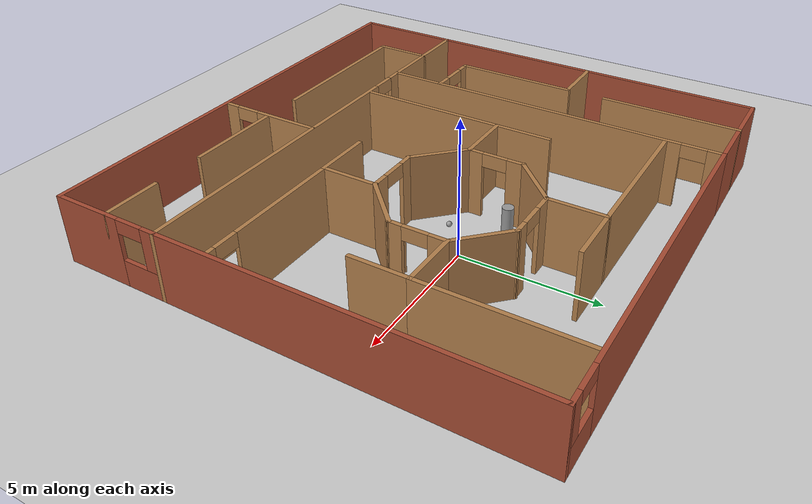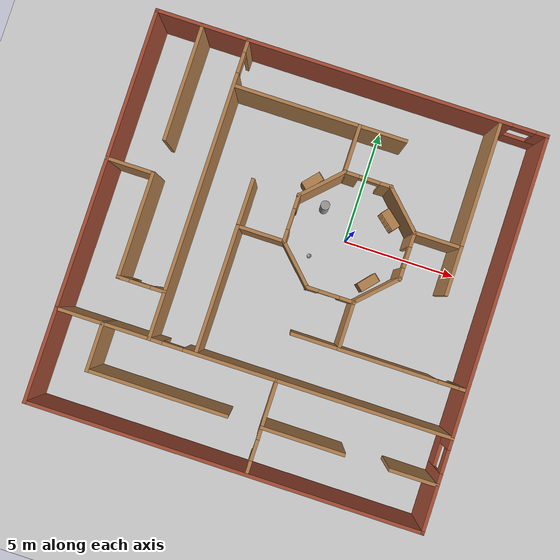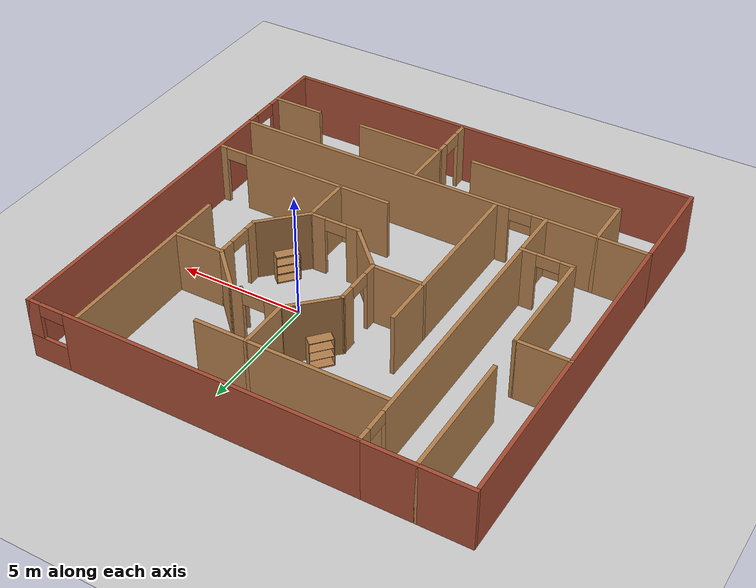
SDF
<sdf version="1.6">
 <world name="default">
  <plugin name="welcome" filename="libwelcome.so"/>
  <light name="sun" type="directional">
   <pose>0 0 10 0 -0 0</pose>
   <diffuse>0.8 0.8 0.8 1</diffuse>
   <specular>0.2 0.2 0.2 1</specular>
   <attenuation>
    <range>1000</range>
    <constant>0.9</constant>
    <linear>0.01</linear>
    <quadratic>0.001</quadratic>
   </attenuation>
   <direction>-0.5 0.1 -0.9</direction>
  </light>
  <model name="ground_plane">
   <static>1</static>
   <link name="link">
    <collision name="collision">
     <geometry><plane><normal>0 0 1</normal><size>100 100</size></plane></geometry>
     <surface><friction><ode><mu>100</mu><mu2>50</mu2></ode></friction></surface>
    </collision>
    <visual name="visual">
     <cast_shadows>0</cast_shadows>
     <geometry><plane><normal>0 0 1</normal><size>100 100</size></plane></geometry>
     <material>
      <script><uri>file://media/materials/scripts/gazebo.material</uri><name>Gazebo/Grey</name></script>
     </material>
    </visual>
   </link>
  </model>
  <gravity>0 0 -9.8</gravity>
  <magnetic_field>6e-06 2.3e-05 -4.2e-05</magnetic_field>
  <atmosphere type="adiabatic"/>
  <physics name="default_physics" default="0" type="ode">
   <max_step_size>0.001</max_step_size>
   <real_time_factor>1</real_time_factor>
   <real_time_update_rate>1000</real_time_update_rate>
  </physics>
  <scene><ambient>0.4 0.4 0.4 1</ambient><background>0.7 0.7 0.7 1</background><shadows>1</shadows></scene>
  <spherical_coordinates>
   <surface_model>EARTH_WGS84</surface_model>
   <latitude_deg>0</latitude_deg>
   <longitude_deg>0</longitude_deg>
   <elevation>0</elevation>
   <heading_deg>0</heading_deg>
  </spherical_coordinates>
  <model name="my_ball">
   <link name="link_0">
    <inertial>
     <mass>1</mass>
     <inertia><ixx>0.1</ixx><ixy>0</ixy><ixz>0</ixz><iyy>0.1</iyy><iyz>0</iyz><izz>0.1</izz></inertia>
    </inertial>
    <visual name="visual">
     <geometry><sphere><radius>0.1</radius></sphere></geometry>
     <material>
      <lighting>1</lighting>
      <script><uri>file://media/materials/scripts/gazebo.material</uri><name>Gazebo/Grey</name></script>
      <shader type="pixel"><normal_map>__default__</normal_map></shader>
      <ambient>1 1 1 1</ambient>
      <diffuse>1 1 1 1</diffuse>
      <specular>1 1 1 1</specular>
      <emissive>1 1 1 1</emissive>
     </material>
    </visual>
    <collision name="collision">
     <geometry><sphere><radius>0.1</radius></sphere></geometry>
     <surface>
      <friction>
       <ode><mu>1</mu><mu2>1</mu2><fdir1>0 0 0</fdir1><slip1>0</slip1><slip2>0</slip2></ode>
       <torsional>
        <coefficient>1</coefficient>
        <patch_radius>0</patch_radius>
        <surface_radius>0</surface_radius>
        <use_patch_radius>1</use_patch_radius>
        <ode><slip>0</slip></ode>
       </torsional>
      </friction>
      <bounce><restitution_coefficient>0</restitution_coefficient><threshold>1e+06</threshold></bounce>
      <contact>
       <collide_without_contact>0</collide_without_contact>
       <collide_without_contact_bitmask>1</collide_without_contact_bitmask>
       <collide_bitmask>1</collide_bitmask>
       <ode>
        <soft_cfm>0</soft_cfm>
        <soft_erp>0.2</soft_erp>
        <kp>1e+13</kp>
        <kd>1</kd>
        <max_vel>0.01</max_vel>
        <min_depth>0</min_depth>
       </ode>
       <bullet>
        <split_impulse>1</split_impulse>
        <split_impulse_penetration_threshold>-0.01</split_impulse_penetration_threshold>
        <soft_cfm>0</soft_cfm>
        <soft_erp>0.2</soft_erp>
        <kp>1e+13</kp>
        <kd>1</kd>
       </bullet>
      </contact>
     </surface>
    </collision>
   </link>
   <static>0</static>
   <pose>-1.31165 -1.10214 0.1 -0.022459 0 0</pose>
  </model>
  <model name="Build-new">
   <pose>-2 -2 0 0 -0 0</pose>
   <link name="Wall_10">
    <pose>4.5 2 0 0 0 -1.5708</pose>
    <visual name="Wall_10_Visual_0">
     <pose>-0.725331 0 1.25 0 -0 0</pose>
     <geometry><box><size>0.699338 0.15 2.5</size></box></geometry>
     <material>
      <script><uri>file://media/materials/scripts/gazebo.material</uri><name>Gazebo/Wood</name></script>
      <ambient>0.266667 0.137255 1 1</ambient>
     </material>
     <meta><layer>0</layer></meta>
    </visual>
    <collision name="Wall_10_Collision_0">
     <geometry><box><size>0.699338 0.15 2.5</size></box></geometry>
     <pose>-0.725331 0 1.25 0 -0 0</pose>
    </collision>
    <visual name="Wall_10_Visual_1">
     <pose>0.799669 0 1.25 0 -0 0</pose>
     <geometry><box><size>0.550662 0.15 2.5</size></box></geometry>
     <material>
      <script><uri>file://media/materials/scripts/gazebo.material</uri><name>Gazebo/Wood</name></script>
      <ambient>0.266667 0.137255 1 1</ambient>
     </material>
     <meta><layer>0</layer></meta>
    </visual>
    <collision name="Wall_10_Collision_1">
     <geometry><box><size>0.550662 0.15 2.5</size></box></geometry>
     <pose>0.799669 0 1.25 0 -0 0</pose>
    </collision>
    <visual name="Wall_10_Visual_2">
     <pose>0.074338 0 2.25 0 -0 0</pose>
     <geometry><box><size>0.9 0.15 0.5</size></box></geometry>
     <material>
      <script><uri>file://media/materials/scripts/gazebo.material</uri><name>Gazebo/Wood</name></script>
      <ambient>0.266667 0.137255 1 1</ambient>
     </material>
     <meta><layer>0</layer></meta>
    </visual>
    <collision name="Wall_10_Collision_2">
     <geometry><box><size>0.9 0.15 0.5</size></box></geometry>
     <pose>0.074338 0 2.25 0 -0 0</pose>
    </collision>
   </link>
   <link name="Wall_11">
    <collision name="Wall_11_Collision">
     <geometry><box><size>2.27132 0.15 2.5</size></box></geometry>
     <pose>0 0 1.25 0 -0 0</pose>
    </collision>
    <visual name="Wall_11_Visual">
     <pose>0 0 1.25 0 -0 0</pose>
     <geometry><box><size>2.27132 0.15 2.5</size></box></geometry>
     <material>
      <script><uri>file://media/materials/scripts/gazebo.material</uri><name>Gazebo/Wood</name></script>
      <ambient>0.278431 0.133333 1 1</ambient>
     </material>
     <meta><layer>0</layer></meta>
    </visual>
    <pose>3.75 0.25 0 0 0 -2.35619</pose>
   </link>
   <link name="Wall_13">
    <collision name="Wall_13_Collision">
     <geometry><box><size>2.15 0.15 2.5</size></box></geometry>
     <pose>0 0 1.25 0 -0 0</pose>
    </collision>
    <visual name="Wall_13_Visual">
     <pose>0 0 1.25 0 -0 0</pose>
     <geometry><box><size>2.15 0.15 2.5</size></box></geometry>
     <material>
      <script><uri>file://media/materials/scripts/gazebo.material</uri><name>Gazebo/Wood</name></script>
      <ambient>0.278431 0.133333 1 1</ambient>
     </material>
     <meta><layer>0</layer></meta>
    </visual>
    <pose>1 5.5 0 0 -0 1.5708</pose>
   </link>
   <link name="Wall_14">
    <collision name="Wall_14_Collision">
     <geometry><box><size>2.15 0.15 2.5</size></box></geometry>
     <pose>0 0 1.25 0 -0 0</pose>
    </collision>
    <visual name="Wall_14_Visual">
     <pose>0 0 1.25 0 -0 0</pose>
     <geometry><box><size>2.15 0.15 2.5</size></box></geometry>
     <material>
      <script><uri>file://media/materials/scripts/gazebo.material</uri><name>Gazebo/Wood</name></script>
      <ambient>0.278431 0.133333 1 1</ambient>
     </material>
     <meta><layer>0</layer></meta>
    </visual>
    <pose>2 6.5 0 0 -0 0</pose>
   </link>
   <link name="Wall_16">
    <collision name="Wall_16_Collision">
     <geometry><box><size>2.15 0.15 2.5</size></box></geometry>
     <pose>0 0 1.25 0 -0 0</pose>
    </collision>
    <visual name="Wall_16_Visual">
     <pose>0 0 1.25 0 -0 0</pose>
     <geometry><box><size>2.15 0.15 2.5</size></box></geometry>
     <material>
      <script><uri>file://media/materials/scripts/gazebo.material</uri><name>Gazebo/Wood</name></script>
      <ambient>0.266667 0.137255 1 1</ambient>
     </material>
     <meta><layer>0</layer></meta>
    </visual>
    <pose>5.5 3 0 0 -0 0</pose>
   </link>
   <link name="Wall_17">
    <collision name="Wall_17_Collision">
     <geometry><box><size>2.15 0.15 2.5</size></box></geometry>
     <pose>0 0 1.25 0 -0 0</pose>
    </collision>
    <visual name="Wall_17_Visual">
     <pose>0 0 1.25 0 -0 0</pose>
     <geometry><box><size>2.15 0.15 2.5</size></box></geometry>
     <material>
      <script><uri>file://media/materials/scripts/gazebo.material</uri><name>Gazebo/Wood</name></script>
      <ambient>0.266667 0.137255 1 1</ambient>
     </material>
     <meta><layer>0</layer></meta>
    </visual>
    <pose>6.5 2 0 0 0 -1.5708</pose>
   </link>
   <link name="Wall_19">
    <collision name="Wall_19_Collision">
     <geometry><box><size>2.15 0.15 2.5</size></box></geometry>
     <pose>0 0 1.25 0 -0 0</pose>
    </collision>
    <visual name="Wall_19_Visual">
     <pose>0 0 1.25 0 -0 0</pose>
     <geometry><box><size>2.15 0.15 2.5</size></box></geometry>
     <material>
      <script><uri>file://media/materials/scripts/gazebo.material</uri><name>Gazebo/Wood</name></script>
      <ambient>0.266667 0.137255 1 1</ambient>
     </material>
     <meta><layer>0</layer></meta>
    </visual>
    <pose>-1.5 1 0 0 -0 3.14159</pose>
   </link>
   <link name="Wall_20">
    <collision name="Wall_20_Collision">
     <geometry><box><size>2.15 0.15 2.5</size></box></geometry>
     <pose>0 0 1.25 0 -0 0</pose>
    </collision>
    <visual name="Wall_20_Visual">
     <pose>0 0 1.25 0 -0 0</pose>
     <geometry><box><size>2.15 0.15 2.5</size></box></geometry>
     <material>
      <script><uri>file://media/materials/scripts/gazebo.material</uri><name>Gazebo/Wood</name></script>
      <ambient>0.266667 0.137255 1 1</ambient>
     </material>
     <meta><layer>0</layer></meta>
    </visual>
    <pose>-2.5 2 0 0 -0 1.5708</pose>
   </link>
   <link name="Wall_22">
    <collision name="Wall_22_Collision">
     <geometry><box><size>2.15 0.15 2.5</size></box></geometry>
     <pose>0 0 1.25 0 -0 0</pose>
    </collision>
    <visual name="Wall_22_Visual">
     <pose>0 0 1.25 0 -0 0</pose>
     <geometry><box><size>2.15 0.15 2.5</size></box></geometry>
     <material>
      <script><uri>file://media/materials/scripts/gazebo.material</uri><name>Gazebo/Wood</name></script>
      <ambient>0.266667 0.137255 1 1</ambient>
     </material>
     <meta><layer>0</layer></meta>
    </visual>
    <pose>3 -1.5 0 0 0 -1.5708</pose>
   </link>
   <link name="Wall_23">
    <collision name="Wall_23_Collision">
     <geometry><box><size>2.15 0.15 2.5</size></box></geometry>
     <pose>0 0 1.25 0 -0 0</pose>
    </collision>
    <visual name="Wall_23_Visual">
     <pose>0 0 1.25 0 -0 0</pose>
     <geometry><box><size>2.15 0.15 2.5</size></box></geometry>
     <material>
      <script><uri>file://media/materials/scripts/gazebo.material</uri><name>Gazebo/Wood</name></script>
      <ambient>0.266667 0.137255 1 1</ambient>
     </material>
     <meta><layer>0</layer></meta>
    </visual>
    <pose>2 -2.5 0 0 -0 3.14159</pose>
   </link>
   <link name="Wall_25">
    <pose>2 8.5 0 0 -0 0</pose>
    <visual name="Wall_25_Visual_0">
     <pose>-0.7875 0 1.25 0 -0 0</pose>
     <geometry><box><size>11.575 0.15 2.5</size></box></geometry>
     <material>
      <script><uri>file://media/materials/scripts/gazebo.material</uri><name>Gazebo/Bricks</name></script>
      <ambient>0.278431 0.133333 1 1</ambient>
     </material>
     <meta><layer>0</layer></meta>
    </visual>
    <collision name="Wall_25_Collision_0">
     <geometry><box><size>11.575 0.15 2.5</size></box></geometry>
     <pose>-0.7875 0 1.25 0 -0 0</pose>
    </collision>
    <visual name="Wall_25_Visual_1">
     <pose>5.7875 0 0.5 0 -0 0</pose>
     <geometry><box><size>1.575 0.15 1</size></box></geometry>
     <material>
      <script><uri>file://media/materials/scripts/gazebo.material</uri><name>Gazebo/Bricks</name></script>
      <ambient>0.278431 0.133333 1 1</ambient>
     </material>
     <meta><layer>0</layer></meta>
    </visual>
    <collision name="Wall_25_Collision_1">
     <geometry><box><size>1.575 0.15 1</size></box></geometry>
     <pose>5.7875 0 0.5 0 -0 0</pose>
    </collision>
    <visual name="Wall_25_Visual_2">
     <pose>6.2875 0 1.75 0 -0 0</pose>
     <geometry><box><size>0.575 0.15 1.5</size></box></geometry>
     <material>
      <script><uri>file://media/materials/scripts/gazebo.material</uri><name>Gazebo/Bricks</name></script>
      <ambient>0.278431 0.133333 1 1</ambient>
     </material>
     <meta><layer>0</layer></meta>
    </visual>
    <collision name="Wall_25_Collision_2">
     <geometry><box><size>0.575 0.15 1.5</size></box></geometry>
     <pose>6.2875 0 1.75 0 -0 0</pose>
    </collision>
    <visual name="Wall_25_Visual_3">
     <pose>5.5 0 2.25 0 -0 0</pose>
     <geometry><box><size>1 0.15 0.5</size></box></geometry>
     <material>
      <script><uri>file://media/materials/scripts/gazebo.material</uri><name>Gazebo/Bricks</name></script>
      <ambient>0.278431 0.133333 1 1</ambient>
     </material>
     <meta><layer>0</layer></meta>
    </visual>
    <collision name="Wall_25_Collision_3">
     <geometry><box><size>1 0.15 0.5</size></box></geometry>
     <pose>5.5 0 2.25 0 -0 0</pose>
    </collision>
   </link>
   <link name="Wall_26">
    <collision name="Wall_26_Collision">
     <geometry><box><size>13.15 0.15 2.5</size></box></geometry>
     <pose>0 0 1.25 0 -0 0</pose>
    </collision>
    <visual name="Wall_26_Visual">
     <pose>0 0 1.25 0 -0 0</pose>
     <geometry><box><size>13.15 0.15 2.5</size></box></geometry>
     <material>
      <script><uri>file://media/materials/scripts/gazebo.material</uri><name>Gazebo/Bricks</name></script>
      <ambient>0.278431 0.133333 1 1</ambient>
     </material>
     <meta><layer>0</layer></meta>
    </visual>
    <pose>8.5 2 0 0 0 -1.5708</pose>
   </link>
   <link name="Wall_27">
    <pose>2 -4.5 0 0 -0 3.14159</pose>
    <visual name="Wall_27_Visual_0">
     <pose>-0.767952 0 1.25 0 -0 0</pose>
     <geometry><box><size>11.6141 0.15 2.5</size></box></geometry>
     <material>
      <script><uri>file://media/materials/scripts/gazebo.material</uri><name>Gazebo/Wood</name></script>
      <ambient>0.266667 0.137255 1 1</ambient>
     </material>
     <meta><layer>0</layer></meta>
    </visual>
    <collision name="Wall_27_Collision_0">
     <geometry><box><size>11.6141 0.15 2.5</size></box></geometry>
     <pose>-0.767952 0 1.25 0 -0 0</pose>
    </collision>
    <visual name="Wall_27_Visual_1">
     <pose>6.25705 0 1.25 0 -0 0</pose>
     <geometry><box><size>0.635905 0.15 2.5</size></box></geometry>
     <material>
      <script><uri>file://media/materials/scripts/gazebo.material</uri><name>Gazebo/Wood</name></script>
      <ambient>0.266667 0.137255 1 1</ambient>
     </material>
     <meta><layer>0</layer></meta>
    </visual>
    <collision name="Wall_27_Collision_1">
     <geometry><box><size>0.635905 0.15 2.5</size></box></geometry>
     <pose>6.25705 0 1.25 0 -0 0</pose>
    </collision>
    <visual name="Wall_27_Visual_2">
     <pose>5.48909 0 2.25 0 -0 0</pose>
     <geometry><box><size>0.9 0.15 0.5</size></box></geometry>
     <material>
      <script><uri>file://media/materials/scripts/gazebo.material</uri><name>Gazebo/Wood</name></script>
      <ambient>0.266667 0.137255 1 1</ambient>
     </material>
     <meta><layer>0</layer></meta>
    </visual>
    <collision name="Wall_27_Collision_2">
     <geometry><box><size>0.9 0.15 0.5</size></box></geometry>
     <pose>5.48909 0 2.25 0 -0 0</pose>
    </collision>
   </link>
   <link name="Wall_28">
    <pose>-4.5 2 0 0 -0 1.5708</pose>
    <visual name="Wall_28_Visual_0">
     <pose>-0.764869 0 1.25 0 -0 0</pose>
     <geometry><box><size>11.6203 0.15 2.5</size></box></geometry>
     <material>
      <script><uri>file://media/materials/scripts/gazebo.material</uri><name>Gazebo/Wood</name></script>
      <ambient>0.266667 0.137255 1 1</ambient>
     </material>
     <meta><layer>0</layer></meta>
    </visual>
    <collision name="Wall_28_Collision_0">
     <geometry><box><size>11.6203 0.15 2.5</size></box></geometry>
     <pose>-0.764869 0 1.25 0 -0 0</pose>
    </collision>
    <visual name="Wall_28_Visual_1">
     <pose>6.26013 0 1.25 0 -0 0</pose>
     <geometry><box><size>0.629738 0.15 2.5</size></box></geometry>
     <material>
      <script><uri>file://media/materials/scripts/gazebo.material</uri><name>Gazebo/Wood</name></script>
      <ambient>0.266667 0.137255 1 1</ambient>
     </material>
     <meta><layer>0</layer></meta>
    </visual>
    <collision name="Wall_28_Collision_1">
     <geometry><box><size>0.629738 0.15 2.5</size></box></geometry>
     <pose>6.26013 0 1.25 0 -0 0</pose>
    </collision>
    <visual name="Wall_28_Visual_2">
     <pose>5.49526 0 2.25 0 -0 0</pose>
     <geometry><box><size>0.9 0.15 0.5</size></box></geometry>
     <material>
      <script><uri>file://media/materials/scripts/gazebo.material</uri><name>Gazebo/Wood</name></script>
      <ambient>0.266667 0.137255 1 1</ambient>
     </material>
     <meta><layer>0</layer></meta>
    </visual>
    <collision name="Wall_28_Collision_2">
     <geometry><box><size>0.9 0.15 0.5</size></box></geometry>
     <pose>5.49526 0 2.25 0 -0 0</pose>
    </collision>
   </link>
   <link name="Wall_31">
    <pose>5.675 -2.5 0 0 -0 0</pose>
    <visual name="Wall_31_Visual_0">
     <pose>-0.59224 0 1.25 0 -0 0</pose>
     <geometry><box><size>4.31552 0.15 2.5</size></box></geometry>
     <material>
      <script><uri>file://media/materials/scripts/gazebo.material</uri><name>Gazebo/Wood</name></script>
      <ambient>0.266667 0.137255 1 1</ambient>
     </material>
     <meta><layer>0</layer></meta>
    </visual>
    <collision name="Wall_31_Collision_0">
     <geometry><box><size>4.31552 0.15 2.5</size></box></geometry>
     <pose>-0.59224 0 1.25 0 -0 0</pose>
    </collision>
    <visual name="Wall_31_Visual_1">
     <pose>2.60776 0 1.25 0 -0 0</pose>
     <geometry><box><size>0.28448 0.15 2.5</size></box></geometry>
     <material>
      <script><uri>file://media/materials/scripts/gazebo.material</uri><name>Gazebo/Wood</name></script>
      <ambient>0.266667 0.137255 1 1</ambient>
     </material>
     <meta><layer>0</layer></meta>
    </visual>
    <collision name="Wall_31_Collision_1">
     <geometry><box><size>0.28448 0.15 2.5</size></box></geometry>
     <pose>2.60776 0 1.25 0 -0 0</pose>
    </collision>
    <visual name="Wall_31_Visual_2">
     <pose>2.01552 0 2.25 0 -0 0</pose>
     <geometry><box><size>0.9 0.15 0.5</size></box></geometry>
     <material>
      <script><uri>file://media/materials/scripts/gazebo.material</uri><name>Gazebo/Wood</name></script>
      <ambient>0.266667 0.137255 1 1</ambient>
     </material>
     <meta><layer>0</layer></meta>
    </visual>
    <collision name="Wall_31_Collision_2">
     <geometry><box><size>0.9 0.15 0.5</size></box></geometry>
     <pose>2.01552 0 2.25 0 -0 0</pose>
    </collision>
   </link>
   <link name="Wall_34">
    <collision name="Wall_34_Collision">
     <geometry><box><size>5.5 0.15 2.5</size></box></geometry>
     <pose>0 0 1.25 0 -0 0</pose>
    </collision>
    <visual name="Wall_34_Visual">
     <pose>0 0 1.25 0 -0 0</pose>
     <geometry><box><size>5.5 0.15 2.5</size></box></geometry>
     <material>
      <script><uri>file://media/materials/scripts/gazebo.material</uri><name>Gazebo/Wood</name></script>
      <ambient>0.278431 0.133333 1 1</ambient>
     </material>
     <meta><layer>0</layer></meta>
    </visual>
    <pose>6.5 5.675 0 0 -0 1.5708</pose>
   </link>
   <link name="Wall_36">
    <collision name="Wall_36_Collision">
     <geometry><box><size>5.5 0.15 2.5</size></box></geometry>
     <pose>0 0 1.25 0 -0 0</pose>
    </collision>
    <visual name="Wall_36_Visual">
     <pose>0 0 1.25 0 -0 0</pose>
     <geometry><box><size>5.5 0.15 2.5</size></box></geometry>
     <material>
      <script><uri>file://media/materials/scripts/gazebo.material</uri><name>Gazebo/Wood</name></script>
      <ambient>0.278431 0.133333 1 1</ambient>
     </material>
     <meta><layer>0</layer></meta>
    </visual>
    <pose>-1.675 6.5 0 0 -0 3.14159</pose>
   </link>
   <link name="Wall_38">
    <collision name="Wall_38_Collision">
     <geometry><box><size>5.5 0.15 2.5</size></box></geometry>
     <pose>0 0 1.25 0 -0 0</pose>
    </collision>
    <visual name="Wall_38_Visual">
     <pose>0 0 1.25 0 -0 0</pose>
     <geometry><box><size>5.5 0.15 2.5</size></box></geometry>
     <material>
      <script><uri>file://media/materials/scripts/gazebo.material</uri><name>Gazebo/Wood</name></script>
      <ambient>0.266667 0.137255 1 1</ambient>
     </material>
     <meta><layer>0</layer></meta>
    </visual>
    <pose>-2.5 -1.675 0 0 0 -1.5708</pose>
   </link>
   <link name="Wall_4">
    <pose>2 -0.5 0 0 -0 3.14159</pose>
    <visual name="Wall_4_Visual_0">
     <pose>-0.729764 0 1.25 0 -0 0</pose>
     <geometry><box><size>0.690472 0.15 2.5</size></box></geometry>
     <material>
      <script><uri>file://media/materials/scripts/gazebo.material</uri><name>Gazebo/Wood</name></script>
      <ambient>0.266667 0.137255 1 1</ambient>
     </material>
     <meta><layer>0</layer></meta>
    </visual>
    <collision name="Wall_4_Collision_0">
     <geometry><box><size>0.690472 0.15 2.5</size></box></geometry>
     <pose>-0.729764 0 1.25 0 -0 0</pose>
    </collision>
    <visual name="Wall_4_Visual_1">
     <pose>0.795236 0 1.25 0 -0 0</pose>
     <geometry><box><size>0.559528 0.15 2.5</size></box></geometry>
     <material>
      <script><uri>file://media/materials/scripts/gazebo.material</uri><name>Gazebo/Wood</name></script>
      <ambient>0.266667 0.137255 1 1</ambient>
     </material>
     <meta><layer>0</layer></meta>
    </visual>
    <collision name="Wall_4_Collision_1">
     <geometry><box><size>0.559528 0.15 2.5</size></box></geometry>
     <pose>0.795236 0 1.25 0 -0 0</pose>
    </collision>
    <visual name="Wall_4_Visual_2">
     <pose>0.065472 0 2.25 0 -0 0</pose>
     <geometry><box><size>0.9 0.15 0.5</size></box></geometry>
     <material>
      <script><uri>file://media/materials/scripts/gazebo.material</uri><name>Gazebo/Wood</name></script>
      <ambient>0.266667 0.137255 1 1</ambient>
     </material>
     <meta><layer>0</layer></meta>
    </visual>
    <collision name="Wall_4_Collision_2">
     <geometry><box><size>0.9 0.15 0.5</size></box></geometry>
     <pose>0.065472 0 2.25 0 -0 0</pose>
    </collision>
   </link>
   <link name="Wall_40">
    <collision name="Wall_40_Collision">
     <geometry><box><size>4.15 0.15 2.5</size></box></geometry>
     <pose>0 0 1.25 0 -0 0</pose>
    </collision>
    <visual name="Wall_40_Visual">
     <pose>0 0 1.25 0 -0 0</pose>
     <geometry><box><size>4.15 0.15 2.5</size></box></geometry>
     <material>
      <script><uri>file://media/materials/scripts/gazebo.material</uri><name>Gazebo/Bricks</name></script>
      <ambient>0.278431 0.133333 1 1</ambient>
     </material>
     <meta><layer>0</layer></meta>
    </visual>
    <pose>-6.5 8.5 0 0 -0 3.14159</pose>
   </link>
   <link name="Wall_41">
    <collision name="Wall_41_Collision">
     <geometry><box><size>13.15 0.15 2.5</size></box></geometry>
     <pose>0 0 1.25 0 -0 0</pose>
    </collision>
    <visual name="Wall_41_Visual">
     <pose>0 0 1.25 0 -0 0</pose>
     <geometry><box><size>13.15 0.15 2.5</size></box></geometry>
     <material>
      <script><uri>file://media/materials/scripts/gazebo.material</uri><name>Gazebo/Bricks</name></script>
      <ambient>0.266667 0.137255 1 1</ambient>
     </material>
     <meta><layer>0</layer></meta>
    </visual>
    <pose>-8.5 2 0 0 0 -1.5708</pose>
   </link>
   <link name="Wall_42">
    <collision name="Wall_42_Collision">
     <geometry><box><size>4.15 0.15 2.5</size></box></geometry>
     <pose>0 0 1.25 0 -0 0</pose>
    </collision>
    <visual name="Wall_42_Visual">
     <pose>0 0 1.25 0 -0 0</pose>
     <geometry><box><size>4.15 0.15 2.5</size></box></geometry>
     <material>
      <script><uri>file://media/materials/scripts/gazebo.material</uri><name>Gazebo/Wood</name></script>
      <ambient>0.235294 0.137255 1 1</ambient>
     </material>
     <meta><layer>0</layer></meta>
    </visual>
    <pose>-6.5 -4.5 0 0 -0 0</pose>
   </link>
   <link name="Wall_44">
    <collision name="Wall_44_Collision">
     <geometry><box><size>5.15 0.15 2.5</size></box></geometry>
     <pose>0 0 1.25 0 -0 0</pose>
    </collision>
    <visual name="Wall_44_Visual">
     <pose>0 0 1.25 0 -0 0</pose>
     <geometry><box><size>5.15 0.15 2.5</size></box></geometry>
     <material>
      <script><uri>file://media/materials/scripts/gazebo.material</uri><name>Gazebo/Wood</name></script>
      <ambient>0.278431 0.133333 1 1</ambient>
     </material>
     <meta><layer>0</layer></meta>
    </visual>
    <pose>-6.5 6 0 0 0 -1.5708</pose>
   </link>
   <link name="Wall_46">
    <collision name="Wall_46_Collision">
     <geometry><box><size>2.15 0.15 2.5</size></box></geometry>
     <pose>0 0 1.25 0 -0 0</pose>
    </collision>
    <visual name="Wall_46_Visual">
     <pose>0 0 1.25 0 -0 0</pose>
     <geometry><box><size>2.15 0.15 2.5</size></box></geometry>
     <material>
      <script><uri>file://media/materials/scripts/gazebo.material</uri><name>Gazebo/Wood</name></script>
      <ambient>0.266667 0.137255 1 1</ambient>
     </material>
     <meta><layer>0</layer></meta>
    </visual>
    <pose>-7.5 2 0 0 -0 0</pose>
   </link>
   <link name="Wall_47">
    <collision name="Wall_47_Collision">
     <geometry><box><size>4.65 0.15 2.5</size></box></geometry>
     <pose>0 0 1.25 0 -0 0</pose>
    </collision>
    <visual name="Wall_47_Visual">
     <pose>0 0 1.25 0 -0 0</pose>
     <geometry><box><size>4.65 0.15 2.5</size></box></geometry>
     <material>
      <script><uri>file://media/materials/scripts/gazebo.material</uri><name>Gazebo/Wood</name></script>
      <ambient>0.266667 0.137255 1 1</ambient>
     </material>
     <meta><layer>0</layer></meta>
    </visual>
    <pose>-6.5 -0.25 0 0 0 -1.5708</pose>
   </link>
   <link name="Wall_48">
    <pose>-5.5 -2.5 0 0 -0 0</pose>
    <visual name="Wall_48_Visual_0">
     <pose>-0.791918 0 1.25 0 -0 0</pose>
     <geometry><box><size>0.566163 0.15 2.5</size></box></geometry>
     <material>
      <script><uri>file://media/materials/scripts/gazebo.material</uri><name>Gazebo/Wood</name></script>
      <ambient>0.235294 0.137255 1 1</ambient>
     </material>
     <meta><layer>0</layer></meta>
    </visual>
    <collision name="Wall_48_Collision_0">
     <geometry><box><size>0.566163 0.15 2.5</size></box></geometry>
     <pose>-0.791918 0 1.25 0 -0 0</pose>
    </collision>
    <visual name="Wall_48_Visual_1">
     <pose>0.733082 0 1.25 0 -0 0</pose>
     <geometry><box><size>0.683837 0.15 2.5</size></box></geometry>
     <material>
      <script><uri>file://media/materials/scripts/gazebo.material</uri><name>Gazebo/Wood</name></script>
      <ambient>0.235294 0.137255 1 1</ambient>
     </material>
     <meta><layer>0</layer></meta>
    </visual>
    <collision name="Wall_48_Collision_1">
     <geometry><box><size>0.683837 0.15 2.5</size></box></geometry>
     <pose>0.733082 0 1.25 0 -0 0</pose>
    </collision>
    <visual name="Wall_48_Visual_2">
     <pose>-0.058837 0 2.25 0 -0 0</pose>
     <geometry><box><size>0.9 0.15 0.5</size></box></geometry>
     <material>
      <script><uri>file://media/materials/scripts/gazebo.material</uri><name>Gazebo/Wood</name></script>
      <ambient>0.235294 0.137255 1 1</ambient>
     </material>
     <meta><layer>0</layer></meta>
    </visual>
    <collision name="Wall_48_Collision_2">
     <geometry><box><size>0.9 0.15 0.5</size></box></geometry>
     <pose>-0.058837 0 2.25 0 -0 0</pose>
    </collision>
   </link>
   <link name="Wall_5">
    <collision name="Wall_5_Collision">
     <geometry><box><size>2.27132 0.15 2.5</size></box></geometry>
     <pose>0 0 1.25 0 -0 0</pose>
    </collision>
    <visual name="Wall_5_Visual">
     <pose>0 0 1.25 0 -0 0</pose>
     <geometry><box><size>2.27132 0.15 2.5</size></box></geometry>
     <material>
      <script><uri>file://media/materials/scripts/gazebo.material</uri><name>Gazebo/Wood</name></script>
      <ambient>0.266667 0.137255 1 1</ambient>
     </material>
     <meta><layer>0</layer></meta>
    </visual>
    <pose>0.25 0.25 0 0 -0 2.35619</pose>
   </link>
   <link name="Wall_50">
    <collision name="Wall_50_Collision">
     <geometry><box><size>4.15 0.15 2.5</size></box></geometry>
     <pose>0 0 1.25 0 -0 0</pose>
    </collision>
    <visual name="Wall_50_Visual">
     <pose>0 0 1.25 0 -0 0</pose>
     <geometry><box><size>4.15 0.15 2.5</size></box></geometry>
     <material>
      <script><uri>file://media/materials/scripts/gazebo.material</uri><name>Gazebo/Bricks</name></script>
      <ambient>0.235294 0.137255 1 1</ambient>
     </material>
     <meta><layer>0</layer></meta>
    </visual>
    <pose>-8.5 -6.5 0 0 0 -1.5708</pose>
   </link>
   <link name="Wall_51">
    <collision name="Wall_51_Collision">
     <geometry><box><size>17.15 0.15 2.5</size></box></geometry>
     <pose>0 0 1.25 0 -0 0</pose>
    </collision>
    <visual name="Wall_51_Visual">
     <pose>0 0 1.25 0 -0 0</pose>
     <geometry><box><size>17.15 0.15 2.5</size></box></geometry>
     <material>
      <script><uri>file://media/materials/scripts/gazebo.material</uri><name>Gazebo/Bricks</name></script>
      <ambient>0.266667 0.137255 1 1</ambient>
     </material>
     <meta><layer>0</layer></meta>
    </visual>
    <pose>0 -8.5 0 0 -0 0</pose>
   </link>
   <link name="Wall_52">
    <pose>8.5 -6.5 0 0 -0 1.5708</pose>
    <visual name="Wall_52_Visual_0">
     <pose>-0.7875 0 1.25 0 -0 0</pose>
     <geometry><box><size>2.575 0.15 2.5</size></box></geometry>
     <material>
      <script><uri>file://media/materials/scripts/gazebo.material</uri><name>Gazebo/Bricks</name></script>
      <ambient>0.266667 0.137255 1 1</ambient>
     </material>
     <meta><layer>0</layer></meta>
    </visual>
    <collision name="Wall_52_Collision_0">
     <geometry><box><size>2.575 0.15 2.5</size></box></geometry>
     <pose>-0.7875 0 1.25 0 -0 0</pose>
    </collision>
    <visual name="Wall_52_Visual_1">
     <pose>1.2875 0 0.5 0 -0 0</pose>
     <geometry><box><size>1.575 0.15 1</size></box></geometry>
     <material>
      <script><uri>file://media/materials/scripts/gazebo.material</uri><name>Gazebo/Bricks</name></script>
      <ambient>0.266667 0.137255 1 1</ambient>
     </material>
     <meta><layer>0</layer></meta>
    </visual>
    <collision name="Wall_52_Collision_1">
     <geometry><box><size>1.575 0.15 1</size></box></geometry>
     <pose>1.2875 0 0.5 0 -0 0</pose>
    </collision>
    <visual name="Wall_52_Visual_2">
     <pose>1.7875 0 1.75 0 -0 0</pose>
     <geometry><box><size>0.575 0.15 1.5</size></box></geometry>
     <material>
      <script><uri>file://media/materials/scripts/gazebo.material</uri><name>Gazebo/Bricks</name></script>
      <ambient>0.266667 0.137255 1 1</ambient>
     </material>
     <meta><layer>0</layer></meta>
    </visual>
    <collision name="Wall_52_Collision_2">
     <geometry><box><size>0.575 0.15 1.5</size></box></geometry>
     <pose>1.7875 0 1.75 0 -0 0</pose>
    </collision>
    <visual name="Wall_52_Visual_3">
     <pose>1 0 2.25 0 -0 0</pose>
     <geometry><box><size>1 0.15 0.5</size></box></geometry>
     <material>
      <script><uri>file://media/materials/scripts/gazebo.material</uri><name>Gazebo/Bricks</name></script>
      <ambient>0.266667 0.137255 1 1</ambient>
     </material>
     <meta><layer>0</layer></meta>
    </visual>
    <collision name="Wall_52_Collision_3">
     <geometry><box><size>1 0.15 0.5</size></box></geometry>
     <pose>1 0 2.25 0 -0 0</pose>
    </collision>
   </link>
   <link name="Wall_54">
    <collision name="Wall_54_Collision">
     <geometry><box><size>2.15 0.15 2.5</size></box></geometry>
     <pose>0 0 1.25 0 -0 0</pose>
    </collision>
    <visual name="Wall_54_Visual">
     <pose>0 0 1.25 0 -0 0</pose>
     <geometry><box><size>2.15 0.15 2.5</size></box></geometry>
     <material>
      <script><uri>file://media/materials/scripts/gazebo.material</uri><name>Gazebo/Wood</name></script>
      <ambient>0.235294 0.137255 1 1</ambient>
     </material>
     <meta><layer>0</layer></meta>
    </visual>
    <pose>-6.5 -5.5 0 0 0 -1.5708</pose>
   </link>
   <link name="Wall_55">
    <collision name="Wall_55_Collision">
     <geometry><box><size>6.15 0.15 2.5</size></box></geometry>
     <pose>0 0 1.25 0 -0 0</pose>
    </collision>
    <visual name="Wall_55_Visual">
     <pose>0 0 1.25 0 -0 0</pose>
     <geometry><box><size>6.15 0.15 2.5</size></box></geometry>
     <material>
      <script><uri>file://media/materials/scripts/gazebo.material</uri><name>Gazebo/Wood</name></script>
      <ambient>0.235294 0.137255 1 1</ambient>
     </material>
     <meta><layer>0</layer></meta>
    </visual>
    <pose>-3.5 -6.5 0 0 -0 0</pose>
   </link>
   <link name="Wall_57">
    <pose>1 -6.5 0 0 0 -1.5708</pose>
    <visual name="Wall_57_Visual_0">
     <pose>-0.786249 0 1.25 0 -0 0</pose>
     <geometry><box><size>2.5775 0.15 2.5</size></box></geometry>
     <material>
      <script><uri>file://media/materials/scripts/gazebo.material</uri><name>Gazebo/Wood</name></script>
      <ambient>0.235294 0.137255 1 1</ambient>
     </material>
     <meta><layer>0</layer></meta>
    </visual>
    <collision name="Wall_57_Collision_0">
     <geometry><box><size>2.5775 0.15 2.5</size></box></geometry>
     <pose>-0.786249 0 1.25 0 -0 0</pose>
    </collision>
    <visual name="Wall_57_Visual_1">
     <pose>1.73875 0 1.25 0 -0 0</pose>
     <geometry><box><size>0.672499 0.15 2.5</size></box></geometry>
     <material>
      <script><uri>file://media/materials/scripts/gazebo.material</uri><name>Gazebo/Wood</name></script>
      <ambient>0.235294 0.137255 1 1</ambient>
     </material>
     <meta><layer>0</layer></meta>
    </visual>
    <collision name="Wall_57_Collision_1">
     <geometry><box><size>0.672499 0.15 2.5</size></box></geometry>
     <pose>1.73875 0 1.25 0 -0 0</pose>
    </collision>
    <visual name="Wall_57_Visual_2">
     <pose>0.952501 0 2.25 0 -0 0</pose>
     <geometry><box><size>0.9 0.15 0.5</size></box></geometry>
     <material>
      <script><uri>file://media/materials/scripts/gazebo.material</uri><name>Gazebo/Wood</name></script>
      <ambient>0.235294 0.137255 1 1</ambient>
     </material>
     <meta><layer>0</layer></meta>
    </visual>
    <collision name="Wall_57_Collision_2">
     <geometry><box><size>0.9 0.15 0.5</size></box></geometry>
     <pose>0.952501 0 2.25 0 -0 0</pose>
    </collision>
   </link>
   <link name="Wall_59">
    <collision name="Wall_59_Collision">
     <geometry><box><size>3.65 0.15 2.5</size></box></geometry>
     <pose>0 0 1.25 0 -0 0</pose>
    </collision>
    <visual name="Wall_59_Visual">
     <pose>0 0 1.25 0 -0 0</pose>
     <geometry><box><size>3.65 0.15 2.5</size></box></geometry>
     <material>
      <script><uri>file://media/materials/scripts/gazebo.material</uri><name>Gazebo/Wood</name></script>
      <ambient>0.266667 0.137255 1 1</ambient>
     </material>
     <meta><layer>0</layer></meta>
    </visual>
    <pose>2.75 -6.5 0 0 -0 0</pose>
   </link>
   <link name="Wall_6">
    <pose>-0.5 2 0 0 -0 1.5708</pose>
    <visual name="Wall_6_Visual_0">
     <pose>-0.782079 0 1.25 0 -0 0</pose>
     <geometry><box><size>0.585841 0.15 2.5</size></box></geometry>
     <material>
      <script><uri>file://media/materials/scripts/gazebo.material</uri><name>Gazebo/Wood</name></script>
      <ambient>0.266667 0.137255 1 1</ambient>
     </material>
     <meta><layer>0</layer></meta>
    </visual>
    <collision name="Wall_6_Collision_0">
     <geometry><box><size>0.585841 0.15 2.5</size></box></geometry>
     <pose>-0.782079 0 1.25 0 -0 0</pose>
    </collision>
    <visual name="Wall_6_Visual_1">
     <pose>0.742921 0 1.25 0 -0 0</pose>
     <geometry><box><size>0.664159 0.15 2.5</size></box></geometry>
     <material>
      <script><uri>file://media/materials/scripts/gazebo.material</uri><name>Gazebo/Wood</name></script>
      <ambient>0.266667 0.137255 1 1</ambient>
     </material>
     <meta><layer>0</layer></meta>
    </visual>
    <collision name="Wall_6_Collision_1">
     <geometry><box><size>0.664159 0.15 2.5</size></box></geometry>
     <pose>0.742921 0 1.25 0 -0 0</pose>
    </collision>
    <visual name="Wall_6_Visual_2">
     <pose>-0.039159 0 2.25 0 -0 0</pose>
     <geometry><box><size>0.9 0.15 0.5</size></box></geometry>
     <material>
      <script><uri>file://media/materials/scripts/gazebo.material</uri><name>Gazebo/Wood</name></script>
      <ambient>0.266667 0.137255 1 1</ambient>
     </material>
     <meta><layer>0</layer></meta>
    </visual>
    <collision name="Wall_6_Collision_2">
     <geometry><box><size>0.9 0.15 0.5</size></box></geometry>
     <pose>-0.039159 0 2.25 0 -0 0</pose>
    </collision>
   </link>
   <link name="Wall_61">
    <collision name="Wall_61_Collision">
     <geometry><box><size>2.15 0.15 2.5</size></box></geometry>
     <pose>0 0 1.25 0 -0 0</pose>
    </collision>
    <visual name="Wall_61_Visual">
     <pose>0 0 1.25 0 -0 0</pose>
     <geometry><box><size>2.15 0.15 2.5</size></box></geometry>
     <material>
      <script><uri>file://media/materials/scripts/gazebo.material</uri><name>Gazebo/Wood</name></script>
      <ambient>0.266667 0.137255 1 1</ambient>
     </material>
     <meta><layer>0</layer></meta>
    </visual>
    <pose>7.5 -6.5 0 0 -0 0</pose>
   </link>
   <link name="Wall_7">
    <collision name="Wall_7_Collision">
     <geometry><box><size>2.27132 0.15 2.5</size></box></geometry>
     <pose>0 0 1.25 0 -0 0</pose>
    </collision>
    <visual name="Wall_7_Visual">
     <pose>0 0 1.25 0 -0 0</pose>
     <geometry><box><size>2.27132 0.15 2.5</size></box></geometry>
     <material>
      <script><uri>file://media/materials/scripts/gazebo.material</uri><name>Gazebo/Wood</name></script>
      <ambient>0.278431 0.133333 1 1</ambient>
     </material>
     <meta><layer>0</layer></meta>
    </visual>
    <pose>0.25 3.75 0 0 -0 0.785398</pose>
   </link>
   <link name="Wall_8">
    <pose>2 4.5 0 0 -0 0</pose>
    <visual name="Wall_8_Visual_0">
     <pose>-0.724878 0 1.25 0 -0 0</pose>
     <geometry><box><size>0.700243 0.15 2.5</size></box></geometry>
     <material>
      <script><uri>file://media/materials/scripts/gazebo.material</uri><name>Gazebo/Wood</name></script>
      <ambient>0.278431 0.133333 1 1</ambient>
     </material>
     <meta><layer>0</layer></meta>
    </visual>
    <collision name="Wall_8_Collision_0">
     <geometry><box><size>0.700243 0.15 2.5</size></box></geometry>
     <pose>-0.724878 0 1.25 0 -0 0</pose>
    </collision>
    <visual name="Wall_8_Visual_1">
     <pose>0.800122 0 1.25 0 -0 0</pose>
     <geometry><box><size>0.549757 0.15 2.5</size></box></geometry>
     <material>
      <script><uri>file://media/materials/scripts/gazebo.material</uri><name>Gazebo/Wood</name></script>
      <ambient>0.278431 0.133333 1 1</ambient>
     </material>
     <meta><layer>0</layer></meta>
    </visual>
    <collision name="Wall_8_Collision_1">
     <geometry><box><size>0.549757 0.15 2.5</size></box></geometry>
     <pose>0.800122 0 1.25 0 -0 0</pose>
    </collision>
    <visual name="Wall_8_Visual_2">
     <pose>0.075243 0 2.25 0 -0 0</pose>
     <geometry><box><size>0.9 0.15 0.5</size></box></geometry>
     <material>
      <script><uri>file://media/materials/scripts/gazebo.material</uri><name>Gazebo/Wood</name></script>
      <ambient>0.278431 0.133333 1 1</ambient>
     </material>
     <meta><layer>0</layer></meta>
    </visual>
    <collision name="Wall_8_Collision_2">
     <geometry><box><size>0.9 0.15 0.5</size></box></geometry>
     <pose>0.075243 0 2.25 0 -0 0</pose>
    </collision>
   </link>
   <link name="Wall_9">
    <collision name="Wall_9_Collision">
     <geometry><box><size>2.27132 0.15 2.5</size></box></geometry>
     <pose>0 0 1.25 0 -0 0</pose>
    </collision>
    <visual name="Wall_9_Visual">
     <pose>0 0 1.25 0 -0 0</pose>
     <geometry><box><size>2.27132 0.15 2.5</size></box></geometry>
     <material>
      <script><uri>file://media/materials/scripts/gazebo.material</uri><name>Gazebo/Wood</name></script>
      <ambient>0.278431 0.133333 1 1</ambient>
     </material>
     <meta><layer>0</layer></meta>
    </visual>
    <pose>3.75 3.75 0 0 0 -0.785398</pose>
   </link>
   <static>1</static>
  </model>
  <model name="bookshelf">
   <static>1</static>
   <link name="link">
    <inertial><mass>1</mass></inertial>
    <collision name="back">
     <pose>0 0.005 0.6 0 -0 0</pose>
     <geometry><box><size>0.9 0.01 1.2</size></box></geometry>
    </collision>
    <visual name="visual1">
     <pose>0 0.005 0.6 0 -0 0</pose>
     <geometry><box><size>0.9 0.01 1.2</size></box></geometry>
     <material>
      <script><uri>file://media/materials/scripts/gazebo.material</uri><name>Gazebo/Wood</name></script>
     </material>
    </visual>
    <collision name="left_side">
     <pose>0.45 -0.195 0.6 0 -0 0</pose>
     <geometry><box><size>0.02 0.4 1.2</size></box></geometry>
    </collision>
    <visual name="visual2">
     <pose>0.45 -0.195 0.6 0 -0 0</pose>
     <geometry><box><size>0.02 0.4 1.2</size></box></geometry>
     <material>
      <script><uri>file://media/materials/scripts/gazebo.material</uri><name>Gazebo/Wood</name></script>
     </material>
    </visual>
    <collision name="right_side">
     <pose>-0.45 -0.195 0.6 0 -0 0</pose>
     <geometry><box><size>0.02 0.4 1.2</size></box></geometry>
    </collision>
    <visual name="visual3">
     <pose>-0.45 -0.195 0.6 0 -0 0</pose>
     <geometry><box><size>0.02 0.4 1.2</size></box></geometry>
     <material>
      <script><uri>file://media/materials/scripts/gazebo.material</uri><name>Gazebo/Wood</name></script>
     </material>
    </visual>
    <collision name="bottom">
     <pose>0 -0.195 0.03 0 -0 0</pose>
     <geometry><box><size>0.88 0.4 0.06</size></box></geometry>
    </collision>
    <visual name="visual4">
     <pose>0 -0.195 0.03 0 -0 0</pose>
     <geometry><box><size>0.88 0.4 0.06</size></box></geometry>
     <material>
      <script><uri>file://media/materials/scripts/gazebo.material</uri><name>Gazebo/Wood</name></script>
     </material>
    </visual>
    <collision name="top">
     <pose>0 -0.195 1.19 0 -0 0</pose>
     <geometry><box><size>0.88 0.4 0.02</size></box></geometry>
    </collision>
    <visual name="visual5">
     <pose>0 -0.195 1.19 0 -0 0</pose>
     <geometry><box><size>0.88 0.4 0.02</size></box></geometry>
     <material>
      <script><uri>file://media/materials/scripts/gazebo.material</uri><name>Gazebo/Wood</name></script>
     </material>
    </visual>
    <collision name="low_shelf">
     <pose>0 -0.195 0.43 0 -0 0</pose>
     <geometry><box><size>0.88 0.4 0.02</size></box></geometry>
    </collision>
    <visual name="visual6">
     <pose>0 -0.195 0.43 0 -0 0</pose>
     <geometry><box><size>0.88 0.4 0.02</size></box></geometry>
     <material>
      <script><uri>file://media/materials/scripts/gazebo.material</uri><name>Gazebo/Wood</name></script>
     </material>
    </visual>
    <collision name="high_shelf">
     <pose>0 -0.195 0.8 0 -0 0</pose>
     <geometry><box><size>0.88 0.4 0.02</size></box></geometry>
    </collision>
    <visual name="visual7">
     <pose>0 -0.195 0.8 0 -0 0</pose>
     <geometry><box><size>0.88 0.4 0.02</size></box></geometry>
     <material>
      <script><uri>file://media/materials/scripts/gazebo.material</uri><name>Gazebo/Wood</name></script>
     </material>
    </visual>
   </link>
   <pose>1.58401 -1.59765 0 0 0 -2.2882</pose>
  </model>
  <model name="bookshelf_clone">
   <static>1</static>
   <link name="link">
    <inertial><mass>1</mass></inertial>
    <collision name="back">
     <pose>0 0.005 0.6 0 -0 0</pose>
     <geometry><box><size>0.9 0.01 1.2</size></box></geometry>
    </collision>
    <visual name="visual1">
     <pose>0 0.005 0.6 0 -0 0</pose>
     <geometry><box><size>0.9 0.01 1.2</size></box></geometry>
     <material>
      <script><uri>file://media/materials/scripts/gazebo.material</uri><name>Gazebo/Wood</name></script>
     </material>
    </visual>
    <collision name="left_side">
     <pose>0.45 -0.195 0.6 0 -0 0</pose>
     <geometry><box><size>0.02 0.4 1.2</size></box></geometry>
    </collision>
    <visual name="visual2">
     <pose>0.45 -0.195 0.6 0 -0 0</pose>
     <geometry><box><size>0.02 0.4 1.2</size></box></geometry>
     <material>
      <script><uri>file://media/materials/scripts/gazebo.material</uri><name>Gazebo/Wood</name></script>
     </material>
    </visual>
    <collision name="right_side">
     <pose>-0.45 -0.195 0.6 0 -0 0</pose>
     <geometry><box><size>0.02 0.4 1.2</size></box></geometry>
    </collision>
    <visual name="visual3">
     <pose>-0.45 -0.195 0.6 0 -0 0</pose>
     <geometry><box><size>0.02 0.4 1.2</size></box></geometry>
     <material>
      <script><uri>file://media/materials/scripts/gazebo.material</uri><name>Gazebo/Wood</name></script>
     </material>
    </visual>
    <collision name="bottom">
     <pose>0 -0.195 0.03 0 -0 0</pose>
     <geometry><box><size>0.88 0.4 0.06</size></box></geometry>
    </collision>
    <visual name="visual4">
     <pose>0 -0.195 0.03 0 -0 0</pose>
     <geometry><box><size>0.88 0.4 0.06</size></box></geometry>
     <material>
      <script><uri>file://media/materials/scripts/gazebo.material</uri><name>Gazebo/Wood</name></script>
     </material>
    </visual>
    <collision name="top">
     <pose>0 -0.195 1.19 0 -0 0</pose>
     <geometry><box><size>0.88 0.4 0.02</size></box></geometry>
    </collision>
    <visual name="visual5">
     <pose>0 -0.195 1.19 0 -0 0</pose>
     <geometry><box><size>0.88 0.4 0.02</size></box></geometry>
     <material>
      <script><uri>file://media/materials/scripts/gazebo.material</uri><name>Gazebo/Wood</name></script>
     </material>
    </visual>
    <collision name="low_shelf">
     <pose>0 -0.195 0.43 0 -0 0</pose>
     <geometry><box><size>0.88 0.4 0.02</size></box></geometry>
    </collision>
    <visual name="visual6">
     <pose>0 -0.195 0.43 0 -0 0</pose>
     <geometry><box><size>0.88 0.4 0.02</size></box></geometry>
     <material>
      <script><uri>file://media/materials/scripts/gazebo.material</uri><name>Gazebo/Wood</name></script>
     </material>
    </visual>
    <collision name="high_shelf">
     <pose>0 -0.195 0.8 0 -0 0</pose>
     <geometry><box><size>0.88 0.4 0.02</size></box></geometry>
    </collision>
    <visual name="visual7">
     <pose>0 -0.195 0.8 0 -0 0</pose>
     <geometry><box><size>0.88 0.4 0.02</size></box></geometry>
     <material>
      <script><uri>file://media/materials/scripts/gazebo.material</uri><name>Gazebo/Wood</name></script>
     </material>
    </visual>
   </link>
   <pose>-2.01986 1.80218 0 0 0 -2.2882</pose>
  </model>
  <model name="bookshelf_clone_0">
   <static>1</static>
   <link name="link">
    <inertial><mass>1</mass></inertial>
    <collision name="back">
     <pose>0 0.005 0.6 0 -0 0</pose>
     <geometry><box><size>0.9 0.01 1.2</size></box></geometry>
    </collision>
    <visual name="visual1">
     <pose>0 0.005 0.6 0 -0 0</pose>
     <geometry><box><size>0.9 0.01 1.2</size></box></geometry>
     <material>
      <script><uri>file://media/materials/scripts/gazebo.material</uri><name>Gazebo/Wood</name></script>
     </material>
    </visual>
    <collision name="left_side">
     <pose>0.45 -0.195 0.6 0 -0 0</pose>
     <geometry><box><size>0.02 0.4 1.2</size></box></geometry>
    </collision>
    <visual name="visual2">
     <pose>0.45 -0.195 0.6 0 -0 0</pose>
     <geometry><box><size>0.02 0.4 1.2</size></box></geometry>
     <material>
      <script><uri>file://media/materials/scripts/gazebo.material</uri><name>Gazebo/Wood</name></script>
     </material>
    </visual>
    <collision name="right_side">
     <pose>-0.45 -0.195 0.6 0 -0 0</pose>
     <geometry><box><size>0.02 0.4 1.2</size></box></geometry>
    </collision>
    <visual name="visual3">
     <pose>-0.45 -0.195 0.6 0 -0 0</pose>
     <geometry><box><size>0.02 0.4 1.2</size></box></geometry>
     <material>
      <script><uri>file://media/materials/scripts/gazebo.material</uri><name>Gazebo/Wood</name></script>
     </material>
    </visual>
    <collision name="bottom">
     <pose>0 -0.195 0.03 0 -0 0</pose>
     <geometry><box><size>0.88 0.4 0.06</size></box></geometry>
    </collision>
    <visual name="visual4">
     <pose>0 -0.195 0.03 0 -0 0</pose>
     <geometry><box><size>0.88 0.4 0.06</size></box></geometry>
     <material>
      <script><uri>file://media/materials/scripts/gazebo.material</uri><name>Gazebo/Wood</name></script>
     </material>
    </visual>
    <collision name="top">
     <pose>0 -0.195 1.19 0 -0 0</pose>
     <geometry><box><size>0.88 0.4 0.02</size></box></geometry>
    </collision>
    <visual name="visual5">
     <pose>0 -0.195 1.19 0 -0 0</pose>
     <geometry><box><size>0.88 0.4 0.02</size></box></geometry>
     <material>
      <script><uri>file://media/materials/scripts/gazebo.material</uri><name>Gazebo/Wood</name></script>
     </material>
    </visual>
    <collision name="low_shelf">
     <pose>0 -0.195 0.43 0 -0 0</pose>
     <geometry><box><size>0.88 0.4 0.02</size></box></geometry>
    </collision>
    <visual name="visual6">
     <pose>0 -0.195 0.43 0 -0 0</pose>
     <geometry><box><size>0.88 0.4 0.02</size></box></geometry>
     <material>
      <script><uri>file://media/materials/scripts/gazebo.material</uri><name>Gazebo/Wood</name></script>
     </material>
    </visual>
    <collision name="high_shelf">
     <pose>0 -0.195 0.8 0 -0 0</pose>
     <geometry><box><size>0.88 0.4 0.02</size></box></geometry>
    </collision>
    <visual name="visual7">
     <pose>0 -0.195 0.8 0 -0 0</pose>
     <geometry><box><size>0.88 0.4 0.02</size></box></geometry>
     <material>
      <script><uri>file://media/materials/scripts/gazebo.material</uri><name>Gazebo/Wood</name></script>
     </material>
    </visual>
   </link>
   <pose>1.64042 1.5399 0 0 0 -0.699888</pose>
  </model>
  <model name="form">
   <link name="link_0">
    <inertial>
     <mass>1</mass>
     <inertia><ixx>0.145833</ixx><ixy>0</ixy><ixz>0</ixz><iyy>0.145833</iyy><iyz>0</iyz><izz>0.125</izz></inertia>
    </inertial>
    <visual name="visual">
     <geometry><cylinder><radius>0.2</radius><length>2</length></cylinder></geometry>
     <material>
      <lighting>1</lighting>
      <script><uri>file://media/materials/scripts/gazebo.material</uri><name>Gazebo/Grey</name></script>
      <shader type="pixel"><normal_map>__default__</normal_map></shader>
      <ambient>0.3 0.3 0.3 1</ambient>
      <diffuse>0.7 0.7 0.7 1</diffuse>
      <specular>0.01 0.01 0.01 1</specular>
      <emissive>0 0 0 1</emissive>
     </material>
    </visual>
    <collision name="collision">
     <geometry><cylinder><radius>0.2</radius><length>2</length></cylinder></geometry>
     <surface>
      <friction>
       <ode><mu>1</mu><mu2>1</mu2><fdir1>0 0 0</fdir1><slip1>0</slip1><slip2>0</slip2></ode>
       <torsional>
        <coefficient>1</coefficient>
        <patch_radius>0</patch_radius>
        <surface_radius>0</surface_radius>
        <use_patch_radius>1</use_patch_radius>
        <ode><slip>0</slip></ode>
       </torsional>
      </friction>
      <bounce><restitution_coefficient>0</restitution_coefficient><threshold>1e+06</threshold></bounce>
      <contact>
       <collide_without_contact>0</collide_without_contact>
       <collide_without_contact_bitmask>1</collide_without_contact_bitmask>
       <collide_bitmask>1</collide_bitmask>
       <ode>
        <soft_cfm>0</soft_cfm>
        <soft_erp>0.2</soft_erp>
        <kp>1e+13</kp>
        <kd>1</kd>
        <max_vel>0.01</max_vel>
        <min_depth>0</min_depth>
       </ode>
       <bullet>
        <split_impulse>1</split_impulse>
        <split_impulse_penetration_threshold>-0.01</split_impulse_penetration_threshold>
        <soft_cfm>0</soft_cfm>
        <soft_erp>0.2</soft_erp>
        <kp>1e+13</kp>
        <kd>1</kd>
       </bullet>
      </contact>
     </surface>
    </collision>
   </link>
   <static>0</static>
   <pose>-1.33347 1.06871 0.5 0 -0 0</pose>
  </model>
 </world>
</sdf>
